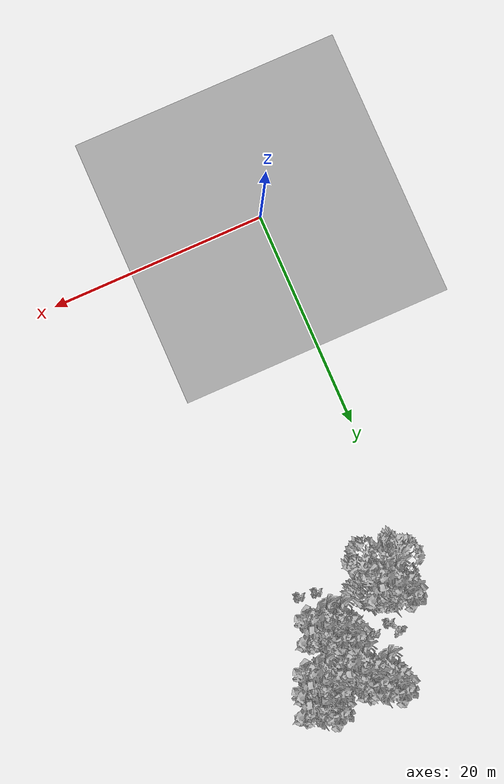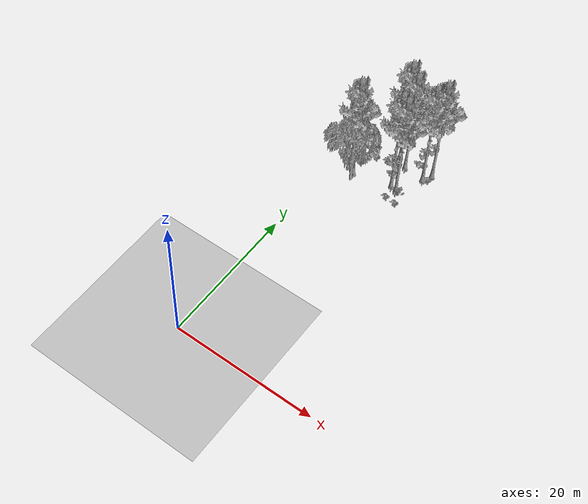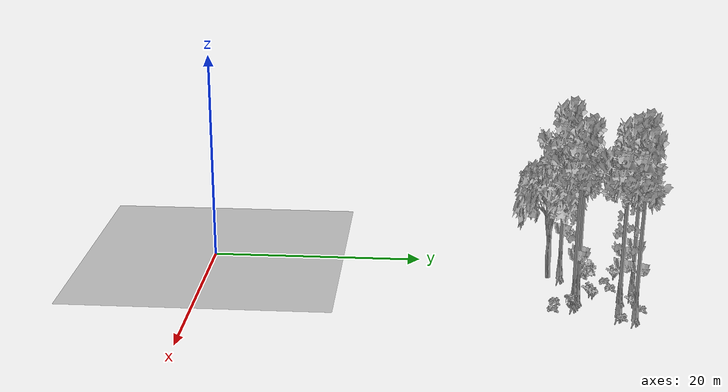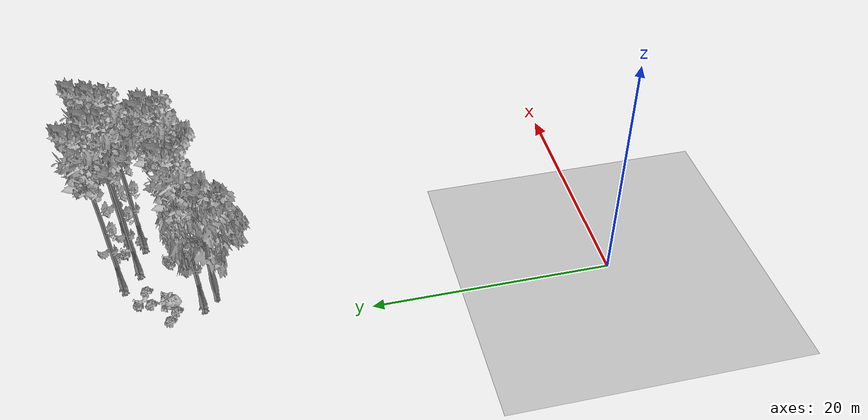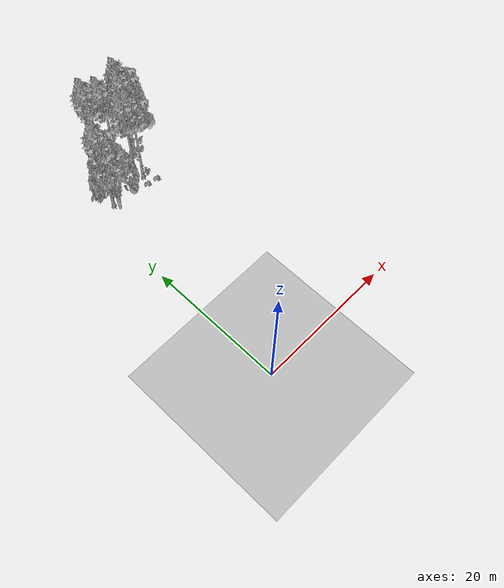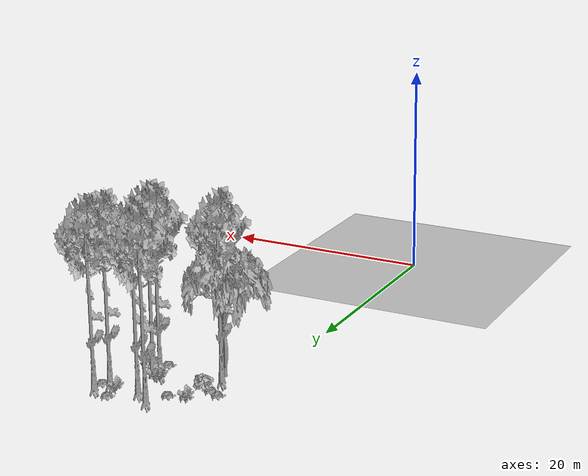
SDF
<sdf version="1.7">
 <world name="default">
  <model name="ground_plane">
   <static>1</static>
   <link name="link">
    <collision name="collision">
     <pose>-50 0 0 0 -0 0</pose>
     <geometry><plane><normal>0 0 1</normal><size>80 80</size></plane></geometry>
     <surface><contact><ode><min_depth>0.01</min_depth><max_vel>0</max_vel></ode></contact></surface>
    </collision>
    <visual name="grass">
     <cast_shadows>0</cast_shadows>
     <geometry>
      <mesh>
       <scale>0.46714285714285714 0.46714285714285714 0.1</scale>
       <uri>file://grass_plane/meshes/grass_plane.dae</uri>
      </mesh>
     </geometry>
    </visual>
   </link>
  </model>
  <model name="Tree 44">
   <static>1</static>
   <pose>11.958026278154875 39.20043187799922 0 1.57079 -0 0</pose>
   <link name="link">
    <collision name="collision">
     <geometry><mesh><scale>3.5 5 3.5</scale><uri>model://tree_9/meshes/tree_9.obj</uri></mesh></geometry>
    </collision>
    <visual name="visual">
     <geometry><mesh><scale>3.5 5 3.5</scale><uri>model://tree_9/meshes/tree_9.obj</uri></mesh></geometry>
    </visual>
   </link>
  </model>
  <model name="Tree 175">
   <static>1</static>
   <pose>8.248318485753508 38.27594168266185 0 1.57079 -0 0</pose>
   <link name="link">
    <collision name="collision">
     <geometry><mesh><scale>3.5 5 3.5</scale><uri>model://tree_9/meshes/tree_9.obj</uri></mesh></geometry>
    </collision>
    <visual name="visual">
     <geometry><mesh><scale>3.5 5 3.5</scale><uri>model://tree_9/meshes/tree_9.obj</uri></mesh></geometry>
    </visual>
   </link>
  </model>
  <model name="Tree 304">
   <static>1</static>
   <pose>3.17558753835894 33.25586846577545 0 1.57079 -0 0</pose>
   <link name="link">
    <collision name="collision">
     <geometry><mesh><scale>3.5 5 3.5</scale><uri>model://tree_9/meshes/tree_9.obj</uri></mesh></geometry>
    </collision>
    <visual name="visual">
     <geometry><mesh><scale>3.5 5 3.5</scale><uri>model://tree_9/meshes/tree_9.obj</uri></mesh></geometry>
    </visual>
   </link>
  </model>
  <model name="Tree 307">
   <static>1</static>
   <pose>8.506518547254544 34.450818837167375 0 1.57079 -0 0</pose>
   <link name="link">
    <collision name="collision">
     <geometry><mesh><scale>3.5 5 3.5</scale><uri>model://tree_9/meshes/tree_9.obj</uri></mesh></geometry>
    </collision>
    <visual name="visual">
     <geometry><mesh><scale>3.5 5 3.5</scale><uri>model://tree_9/meshes/tree_9.obj</uri></mesh></geometry>
    </visual>
   </link>
  </model>
  <model name="Tree 491">
   <static>1</static>
   <pose>11.28722932359765 37.84396268607688 0 1.57079 -0 0</pose>
   <link name="link">
    <collision name="collision">
     <geometry><mesh><scale>3.5 5 3.5</scale><uri>model://tree_9/meshes/tree_9.obj</uri></mesh></geometry>
    </collision>
    <visual name="visual">
     <geometry><mesh><scale>3.5 5 3.5</scale><uri>model://tree_9/meshes/tree_9.obj</uri></mesh></geometry>
    </visual>
   </link>
  </model>
  <model name="Tree 493">
   <static>1</static>
   <pose>9.47850868598782 34.033270194494364 0 1.57079 -0 0</pose>
   <link name="link">
    <collision name="collision">
     <geometry><mesh><scale>3.5 5 3.5</scale><uri>model://tree_9/meshes/tree_9.obj</uri></mesh></geometry>
    </collision>
    <visual name="visual">
     <geometry><mesh><scale>3.5 5 3.5</scale><uri>model://tree_9/meshes/tree_9.obj</uri></mesh></geometry>
    </visual>
   </link>
  </model>
  <model name="Tree 503">
   <static>1</static>
   <pose>3.3868460590432363 32.11051287854825 0 1.57079 -0 0</pose>
   <link name="link">
    <collision name="collision">
     <geometry><mesh><scale>3.5 5 3.5</scale><uri>model://tree_2/meshes/tree_2.obj</uri></mesh></geometry>
    </collision>
    <visual name="visual">
     <geometry><mesh><scale>3.5 5 3.5</scale><uri>model://tree_2/meshes/tree_2.obj</uri></mesh></geometry>
    </visual>
   </link>
  </model>
  <model name="Tree 610">
   <static>1</static>
   <pose>6.679608513855136 39.546457359849484 0 1.57079 -0 0</pose>
   <link name="link">
    <collision name="collision">
     <geometry><mesh><scale>3.5 5 3.5</scale><uri>model://tree_9/meshes/tree_9.obj</uri></mesh></geometry>
    </collision>
    <visual name="visual">
     <geometry><mesh><scale>3.5 5 3.5</scale><uri>model://tree_9/meshes/tree_9.obj</uri></mesh></geometry>
    </visual>
   </link>
  </model>
  <model name="Bush 69">
   <static>1</static>
   <pose>11.858377120995272 38.05209093425046 0 1.57079 -0 0</pose>
   <link name="link">
    <collision name="collision">
     <geometry><mesh><scale>2 2 2</scale><uri>model://bush_2/meshes/bush_2.obj</uri></mesh></geometry>
     <surface><contact><collide_without_contact>false</collide_without_contact></contact></surface>
    </collision>
    <visual name="visual">
     <geometry><mesh><scale>2 2 2</scale><uri>model://bush_2/meshes/bush_2.obj</uri></mesh></geometry>
    </visual>
   </link>
  </model>
  <model name="Bush 75">
   <static>1</static>
   <pose>10.122002702711676 39.93769498571774 0 1.57079 -0 0</pose>
   <link name="link">
    <collision name="collision">
     <geometry><mesh><scale>2 2 2</scale><uri>model://bush_2/meshes/bush_2.obj</uri></mesh></geometry>
     <surface><contact><collide_without_contact>false</collide_without_contact></contact></surface>
    </collision>
    <visual name="visual">
     <geometry><mesh><scale>2 2 2</scale><uri>model://bush_2/meshes/bush_2.obj</uri></mesh></geometry>
    </visual>
   </link>
  </model>
  <model name="Bush 89">
   <static>1</static>
   <pose>10.019142174014902 33.6599391740302 0 1.57079 -0 0</pose>
   <link name="link">
    <collision name="collision">
     <geometry><mesh><scale>2 2 2</scale><uri>model://bush_4/meshes/bush_4.obj</uri></mesh></geometry>
     <surface><contact><collide_without_contact>false</collide_without_contact></contact></surface>
    </collision>
    <visual name="visual">
     <geometry><mesh><scale>2 2 2</scale><uri>model://bush_4/meshes/bush_4.obj</uri></mesh></geometry>
    </visual>
   </link>
  </model>
  <model name="Bush 141">
   <static>1</static>
   <pose>3.3442972702443328 35.68283378257027 0 1.57079 -0 0</pose>
   <link name="link">
    <collision name="collision">
     <geometry><mesh><scale>2 2 2</scale><uri>model://bush_1/meshes/bush_1.obj</uri></mesh></geometry>
     <surface><contact><collide_without_contact>false</collide_without_contact></contact></surface>
    </collision>
    <visual name="visual">
     <geometry><mesh><scale>2 2 2</scale><uri>model://bush_1/meshes/bush_1.obj</uri></mesh></geometry>
    </visual>
   </link>
  </model>
  <model name="Bush 209">
   <static>1</static>
   <pose>8.89491253218526 32.3821235247446 0 1.57079 -0 0</pose>
   <link name="link">
    <collision name="collision">
     <geometry><mesh><scale>2 2 2</scale><uri>model://bush_2/meshes/bush_2.obj</uri></mesh></geometry>
     <surface><contact><collide_without_contact>false</collide_without_contact></contact></surface>
    </collision>
    <visual name="visual">
     <geometry><mesh><scale>2 2 2</scale><uri>model://bush_2/meshes/bush_2.obj</uri></mesh></geometry>
    </visual>
   </link>
  </model>
  <model name="Bush 298">
   <static>1</static>
   <pose>4.151945226728351 37.33487339390557 0 1.57079 -0 0</pose>
   <link name="link">
    <collision name="collision">
     <geometry><mesh><scale>2 2 2</scale><uri>model://bush_2/meshes/bush_2.obj</uri></mesh></geometry>
     <surface><contact><collide_without_contact>false</collide_without_contact></contact></surface>
    </collision>
    <visual name="visual">
     <geometry><mesh><scale>2 2 2</scale><uri>model://bush_2/meshes/bush_2.obj</uri></mesh></geometry>
    </visual>
   </link>
  </model>
  <model name="Bush 307">
   <static>1</static>
   <pose>9.847041844907046 39.19744921876669 0 1.57079 -0 0</pose>
   <link name="link">
    <collision name="collision">
     <geometry><mesh><scale>2 2 2</scale><uri>model://bush_0/meshes/bush_0.obj</uri></mesh></geometry>
     <surface><contact><collide_without_contact>false</collide_without_contact></contact></surface>
    </collision>
    <visual name="visual">
     <geometry><mesh><scale>2 2 2</scale><uri>model://bush_0/meshes/bush_0.obj</uri></mesh></geometry>
    </visual>
   </link>
  </model>
  <model name="Bush 317">
   <static>1</static>
   <pose>7.82795539040535 35.575460624290656 0 1.57079 -0 0</pose>
   <link name="link">
    <collision name="collision">
     <geometry><mesh><scale>2 2 2</scale><uri>model://bush_0/meshes/bush_0.obj</uri></mesh></geometry>
     <surface><contact><collide_without_contact>false</collide_without_contact></contact></surface>
    </collision>
    <visual name="visual">
     <geometry><mesh><scale>2 2 2</scale><uri>model://bush_0/meshes/bush_0.obj</uri></mesh></geometry>
    </visual>
   </link>
  </model>
  <model name="Bush 328">
   <static>1</static>
   <pose>3.724267799447169 38.20470247871336 0 1.57079 -0 0</pose>
   <link name="link">
    <collision name="collision">
     <geometry><mesh><scale>2 2 2</scale><uri>model://bush_0/meshes/bush_0.obj</uri></mesh></geometry>
     <surface><contact><collide_without_contact>false</collide_without_contact></contact></surface>
    </collision>
    <visual name="visual">
     <geometry><mesh><scale>2 2 2</scale><uri>model://bush_0/meshes/bush_0.obj</uri></mesh></geometry>
    </visual>
   </link>
  </model>
  <model name="Bush 375">
   <static>1</static>
   <pose>10.452590958735911 32.138045524619216 0 1.57079 -0 0</pose>
   <link name="link">
    <collision name="collision">
     <geometry><mesh><scale>2 2 2</scale><uri>model://bush_2/meshes/bush_2.obj</uri></mesh></geometry>
     <surface><contact><collide_without_contact>false</collide_without_contact></contact></surface>
    </collision>
    <visual name="visual">
     <geometry><mesh><scale>2 2 2</scale><uri>model://bush_2/meshes/bush_2.obj</uri></mesh></geometry>
    </visual>
   </link>
  </model>
  <model name="Bush 450">
   <static>1</static>
   <pose>1.9785951260685906 35.882035786603936 0 1.57079 -0 0</pose>
   <link name="link">
    <collision name="collision">
     <geometry><mesh><scale>2 2 2</scale><uri>model://bush_2/meshes/bush_2.obj</uri></mesh></geometry>
     <surface><contact><collide_without_contact>false</collide_without_contact></contact></surface>
    </collision>
    <visual name="visual">
     <geometry><mesh><scale>2 2 2</scale><uri>model://bush_2/meshes/bush_2.obj</uri></mesh></geometry>
    </visual>
   </link>
  </model>
  <model name="Bush 461">
   <static>1</static>
   <pose>2.9613515079611545 35.33693405159451 0 1.57079 -0 0</pose>
   <link name="link">
    <collision name="collision">
     <geometry><mesh><scale>2 2 2</scale><uri>model://bush_2/meshes/bush_2.obj</uri></mesh></geometry>
     <surface><contact><collide_without_contact>false</collide_without_contact></contact></surface>
    </collision>
    <visual name="visual">
     <geometry><mesh><scale>2 2 2</scale><uri>model://bush_2/meshes/bush_2.obj</uri></mesh></geometry>
    </visual>
   </link>
  </model>
  <model name="Bush 572">
   <static>1</static>
   <pose>5.674249621572599 37.694390043282155 0 1.57079 -0 0</pose>
   <link name="link">
    <collision name="collision">
     <geometry><mesh><scale>2 2 2</scale><uri>model://bush_2/meshes/bush_2.obj</uri></mesh></geometry>
     <surface><contact><collide_without_contact>false</collide_without_contact></contact></surface>
    </collision>
    <visual name="visual">
     <geometry><mesh><scale>2 2 2</scale><uri>model://bush_2/meshes/bush_2.obj</uri></mesh></geometry>
    </visual>
   </link>
  </model>
  <model name="Bush 592">
   <static>1</static>
   <pose>8.227983713773042 35.818712399328064 0 1.57079 -0 0</pose>
   <link name="link">
    <collision name="collision">
     <geometry><mesh><scale>2 2 2</scale><uri>model://bush_0/meshes/bush_0.obj</uri></mesh></geometry>
     <surface><contact><collide_without_contact>false</collide_without_contact></contact></surface>
    </collision>
    <visual name="visual">
     <geometry><mesh><scale>2 2 2</scale><uri>model://bush_0/meshes/bush_0.obj</uri></mesh></geometry>
    </visual>
   </link>
  </model>
 </world>
</sdf>
